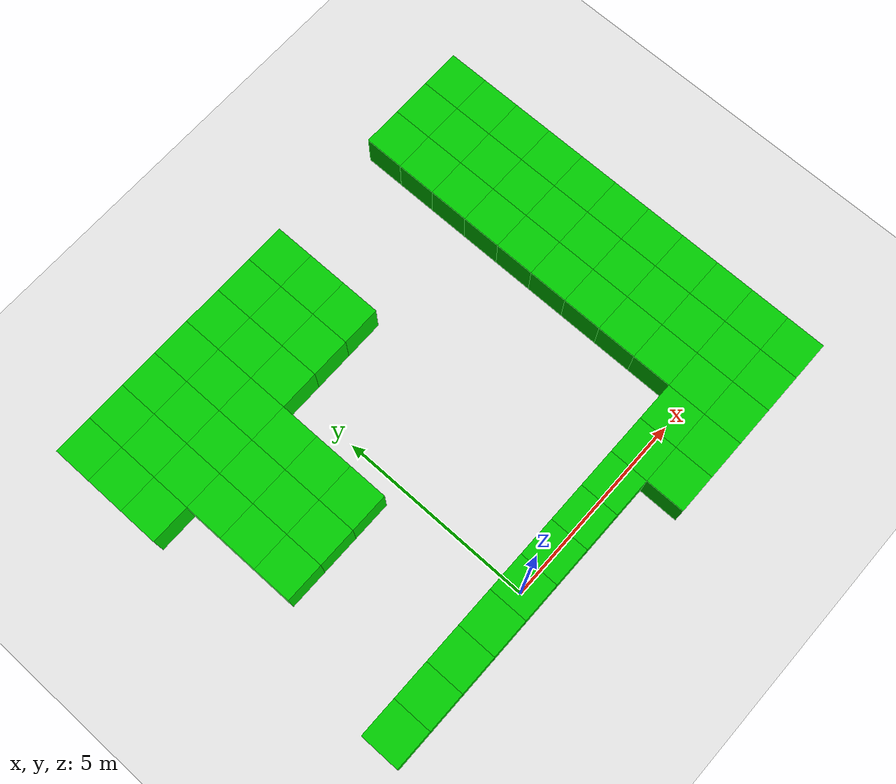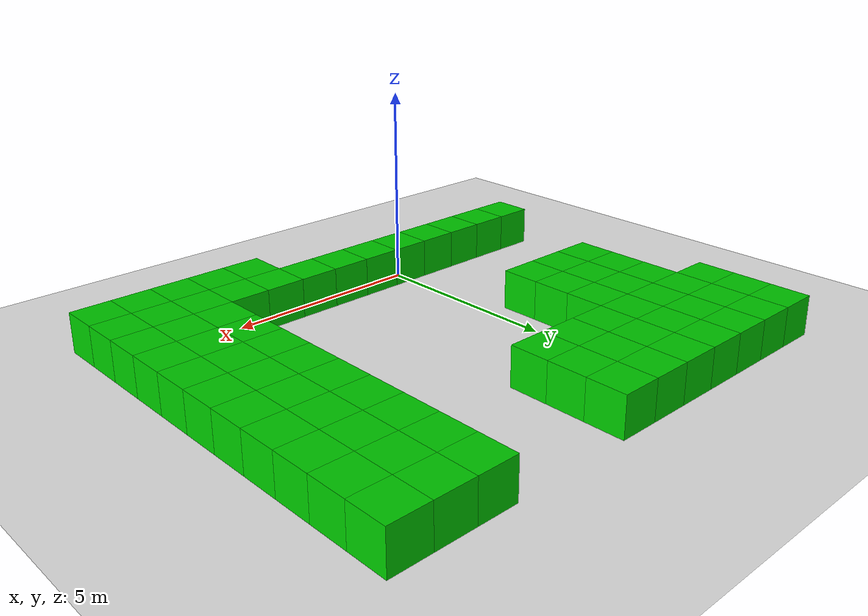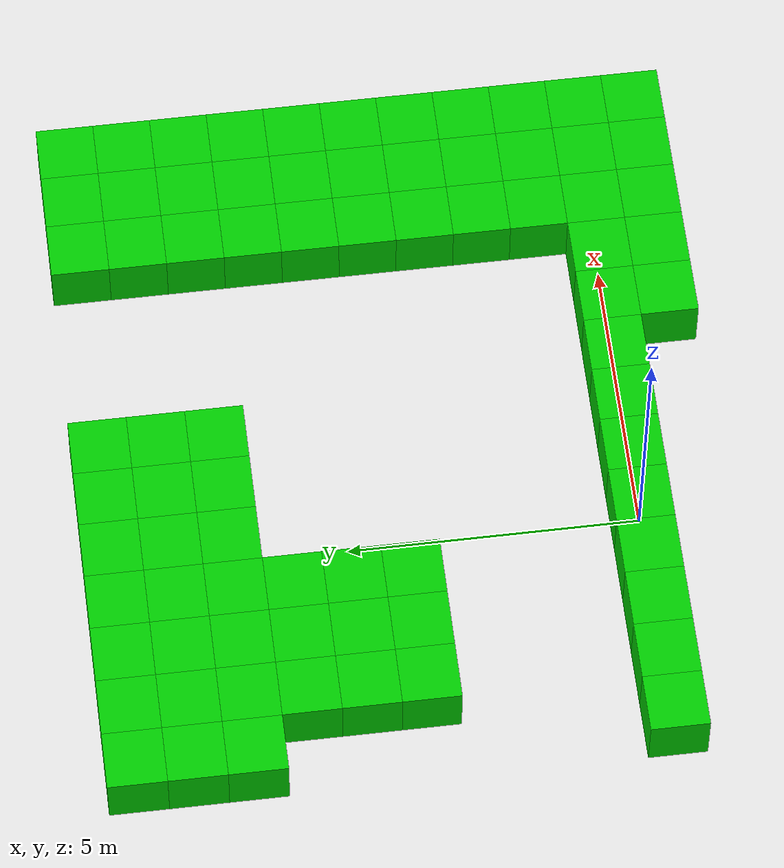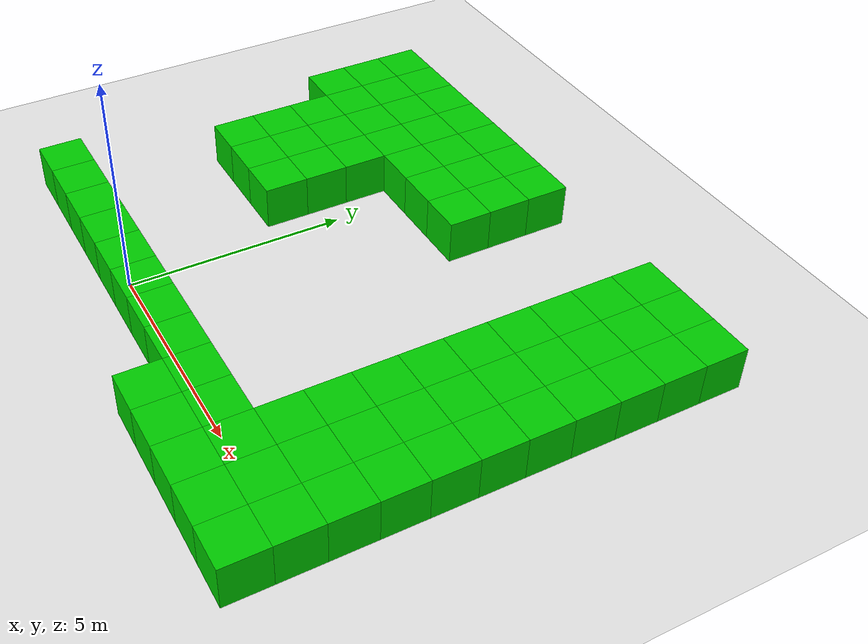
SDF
<sdf version="1.6">
 <world name="generated_maze">
  <model name="ground_plane">
   <static>true</static>
   <link name="link">
    <collision name="collision">
     <geometry><plane><normal>0 0 1</normal><size>100 100</size></plane></geometry>
    </collision>
    <visual name="visual">
     <geometry><plane><normal>0 0 1</normal><size>100 100</size></plane></geometry>
     <material>
      <ambient>0.9 0.9 0.9 1</ambient>
      <diffuse>0.9 0.9 0.9 1</diffuse>
      <specular>0.3 0.3 0.3 1</specular>
     </material>
    </visual>
   </link>
  </model>
  <model name="wall_0_5">
   <static>true</static>
   <pose>-4 9 0.5 0 0 0</pose>
   <link name="link">
    <collision name="collision"><geometry><box><size>1 1 1</size></box></geometry></collision>
    <visual name="visual">
     <geometry><box><size>1 1 1</size></box></geometry>
     <material>
      <ambient>0.0 0.8 0.0 1</ambient>
      <diffuse>0.0 0.8 0.0 1</diffuse>
      <specular>0.1 0.1 0.1 1</specular>
     </material>
    </visual>
   </link>
  </model>
  <model name="wall_0_6">
   <static>true</static>
   <pose>-3 9 0.5 0 0 0</pose>
   <link name="link">
    <collision name="collision"><geometry><box><size>1 1 1</size></box></geometry></collision>
    <visual name="visual">
     <geometry><box><size>1 1 1</size></box></geometry>
     <material>
      <ambient>0.0 0.8 0.0 1</ambient>
      <diffuse>0.0 0.8 0.0 1</diffuse>
      <specular>0.1 0.1 0.1 1</specular>
     </material>
    </visual>
   </link>
  </model>
  <model name="wall_0_7">
   <static>true</static>
   <pose>-2 9 0.5 0 0 0</pose>
   <link name="link">
    <collision name="collision"><geometry><box><size>1 1 1</size></box></geometry></collision>
    <visual name="visual">
     <geometry><box><size>1 1 1</size></box></geometry>
     <material>
      <ambient>0.0 0.8 0.0 1</ambient>
      <diffuse>0.0 0.8 0.0 1</diffuse>
      <specular>0.1 0.1 0.1 1</specular>
     </material>
    </visual>
   </link>
  </model>
  <model name="wall_0_8">
   <static>true</static>
   <pose>-1 9 0.5 0 0 0</pose>
   <link name="link">
    <collision name="collision"><geometry><box><size>1 1 1</size></box></geometry></collision>
    <visual name="visual">
     <geometry><box><size>1 1 1</size></box></geometry>
     <material>
      <ambient>0.0 0.8 0.0 1</ambient>
      <diffuse>0.0 0.8 0.0 1</diffuse>
      <specular>0.1 0.1 0.1 1</specular>
     </material>
    </visual>
   </link>
  </model>
  <model name="wall_0_9">
   <static>true</static>
   <pose>0 9 0.5 0 0 0</pose>
   <link name="link">
    <collision name="collision"><geometry><box><size>1 1 1</size></box></geometry></collision>
    <visual name="visual">
     <geometry><box><size>1 1 1</size></box></geometry>
     <material>
      <ambient>0.0 0.8 0.0 1</ambient>
      <diffuse>0.0 0.8 0.0 1</diffuse>
      <specular>0.1 0.1 0.1 1</specular>
     </material>
    </visual>
   </link>
  </model>
  <model name="wall_0_10">
   <static>true</static>
   <pose>1 9 0.5 0 0 0</pose>
   <link name="link">
    <collision name="collision"><geometry><box><size>1 1 1</size></box></geometry></collision>
    <visual name="visual">
     <geometry><box><size>1 1 1</size></box></geometry>
     <material>
      <ambient>0.0 0.8 0.0 1</ambient>
      <diffuse>0.0 0.8 0.0 1</diffuse>
      <specular>0.1 0.1 0.1 1</specular>
     </material>
    </visual>
   </link>
  </model>
  <model name="wall_0_11">
   <static>true</static>
   <pose>2 9 0.5 0 0 0</pose>
   <link name="link">
    <collision name="collision"><geometry><box><size>1 1 1</size></box></geometry></collision>
    <visual name="visual">
     <geometry><box><size>1 1 1</size></box></geometry>
     <material>
      <ambient>0.0 0.8 0.0 1</ambient>
      <diffuse>0.0 0.8 0.0 1</diffuse>
      <specular>0.1 0.1 0.1 1</specular>
     </material>
    </visual>
   </link>
  </model>
  <model name="wall_0_15">
   <static>true</static>
   <pose>6 9 0.5 0 0 0</pose>
   <link name="link">
    <collision name="collision"><geometry><box><size>1 1 1</size></box></geometry></collision>
    <visual name="visual">
     <geometry><box><size>1 1 1</size></box></geometry>
     <material>
      <ambient>0.0 0.8 0.0 1</ambient>
      <diffuse>0.0 0.8 0.0 1</diffuse>
      <specular>0.1 0.1 0.1 1</specular>
     </material>
    </visual>
   </link>
  </model>
  <model name="wall_0_16">
   <static>true</static>
   <pose>7 9 0.5 0 0 0</pose>
   <link name="link">
    <collision name="collision"><geometry><box><size>1 1 1</size></box></geometry></collision>
    <visual name="visual">
     <geometry><box><size>1 1 1</size></box></geometry>
     <material>
      <ambient>0.0 0.8 0.0 1</ambient>
      <diffuse>0.0 0.8 0.0 1</diffuse>
      <specular>0.1 0.1 0.1 1</specular>
     </material>
    </visual>
   </link>
  </model>
  <model name="wall_0_17">
   <static>true</static>
   <pose>8 9 0.5 0 0 0</pose>
   <link name="link">
    <collision name="collision"><geometry><box><size>1 1 1</size></box></geometry></collision>
    <visual name="visual">
     <geometry><box><size>1 1 1</size></box></geometry>
     <material>
      <ambient>0.0 0.8 0.0 1</ambient>
      <diffuse>0.0 0.8 0.0 1</diffuse>
      <specular>0.1 0.1 0.1 1</specular>
     </material>
    </visual>
   </link>
  </model>
  <model name="wall_1_5">
   <static>true</static>
   <pose>-4 8 0.5 0 0 0</pose>
   <link name="link">
    <collision name="collision"><geometry><box><size>1 1 1</size></box></geometry></collision>
    <visual name="visual">
     <geometry><box><size>1 1 1</size></box></geometry>
     <material>
      <ambient>0.0 0.8 0.0 1</ambient>
      <diffuse>0.0 0.8 0.0 1</diffuse>
      <specular>0.1 0.1 0.1 1</specular>
     </material>
    </visual>
   </link>
  </model>
  <model name="wall_1_6">
   <static>true</static>
   <pose>-3 8 0.5 0 0 0</pose>
   <link name="link">
    <collision name="collision"><geometry><box><size>1 1 1</size></box></geometry></collision>
    <visual name="visual">
     <geometry><box><size>1 1 1</size></box></geometry>
     <material>
      <ambient>0.0 0.8 0.0 1</ambient>
      <diffuse>0.0 0.8 0.0 1</diffuse>
      <specular>0.1 0.1 0.1 1</specular>
     </material>
    </visual>
   </link>
  </model>
  <model name="wall_1_7">
   <static>true</static>
   <pose>-2 8 0.5 0 0 0</pose>
   <link name="link">
    <collision name="collision"><geometry><box><size>1 1 1</size></box></geometry></collision>
    <visual name="visual">
     <geometry><box><size>1 1 1</size></box></geometry>
     <material>
      <ambient>0.0 0.8 0.0 1</ambient>
      <diffuse>0.0 0.8 0.0 1</diffuse>
      <specular>0.1 0.1 0.1 1</specular>
     </material>
    </visual>
   </link>
  </model>
  <model name="wall_1_8">
   <static>true</static>
   <pose>-1 8 0.5 0 0 0</pose>
   <link name="link">
    <collision name="collision"><geometry><box><size>1 1 1</size></box></geometry></collision>
    <visual name="visual">
     <geometry><box><size>1 1 1</size></box></geometry>
     <material>
      <ambient>0.0 0.8 0.0 1</ambient>
      <diffuse>0.0 0.8 0.0 1</diffuse>
      <specular>0.1 0.1 0.1 1</specular>
     </material>
    </visual>
   </link>
  </model>
  <model name="wall_1_9">
   <static>true</static>
   <pose>0 8 0.5 0 0 0</pose>
   <link name="link">
    <collision name="collision"><geometry><box><size>1 1 1</size></box></geometry></collision>
    <visual name="visual">
     <geometry><box><size>1 1 1</size></box></geometry>
     <material>
      <ambient>0.0 0.8 0.0 1</ambient>
      <diffuse>0.0 0.8 0.0 1</diffuse>
      <specular>0.1 0.1 0.1 1</specular>
     </material>
    </visual>
   </link>
  </model>
  <model name="wall_1_10">
   <static>true</static>
   <pose>1 8 0.5 0 0 0</pose>
   <link name="link">
    <collision name="collision"><geometry><box><size>1 1 1</size></box></geometry></collision>
    <visual name="visual">
     <geometry><box><size>1 1 1</size></box></geometry>
     <material>
      <ambient>0.0 0.8 0.0 1</ambient>
      <diffuse>0.0 0.8 0.0 1</diffuse>
      <specular>0.1 0.1 0.1 1</specular>
     </material>
    </visual>
   </link>
  </model>
  <model name="wall_1_11">
   <static>true</static>
   <pose>2 8 0.5 0 0 0</pose>
   <link name="link">
    <collision name="collision"><geometry><box><size>1 1 1</size></box></geometry></collision>
    <visual name="visual">
     <geometry><box><size>1 1 1</size></box></geometry>
     <material>
      <ambient>0.0 0.8 0.0 1</ambient>
      <diffuse>0.0 0.8 0.0 1</diffuse>
      <specular>0.1 0.1 0.1 1</specular>
     </material>
    </visual>
   </link>
  </model>
  <model name="wall_1_15">
   <static>true</static>
   <pose>6 8 0.5 0 0 0</pose>
   <link name="link">
    <collision name="collision"><geometry><box><size>1 1 1</size></box></geometry></collision>
    <visual name="visual">
     <geometry><box><size>1 1 1</size></box></geometry>
     <material>
      <ambient>0.0 0.8 0.0 1</ambient>
      <diffuse>0.0 0.8 0.0 1</diffuse>
      <specular>0.1 0.1 0.1 1</specular>
     </material>
    </visual>
   </link>
  </model>
  <model name="wall_1_16">
   <static>true</static>
   <pose>7 8 0.5 0 0 0</pose>
   <link name="link">
    <collision name="collision"><geometry><box><size>1 1 1</size></box></geometry></collision>
    <visual name="visual">
     <geometry><box><size>1 1 1</size></box></geometry>
     <material>
      <ambient>0.0 0.8 0.0 1</ambient>
      <diffuse>0.0 0.8 0.0 1</diffuse>
      <specular>0.1 0.1 0.1 1</specular>
     </material>
    </visual>
   </link>
  </model>
  <model name="wall_1_17">
   <static>true</static>
   <pose>8 8 0.5 0 0 0</pose>
   <link name="link">
    <collision name="collision"><geometry><box><size>1 1 1</size></box></geometry></collision>
    <visual name="visual">
     <geometry><box><size>1 1 1</size></box></geometry>
     <material>
      <ambient>0.0 0.8 0.0 1</ambient>
      <diffuse>0.0 0.8 0.0 1</diffuse>
      <specular>0.1 0.1 0.1 1</specular>
     </material>
    </visual>
   </link>
  </model>
  <model name="wall_2_5">
   <static>true</static>
   <pose>-4 7 0.5 0 0 0</pose>
   <link name="link">
    <collision name="collision"><geometry><box><size>1 1 1</size></box></geometry></collision>
    <visual name="visual">
     <geometry><box><size>1 1 1</size></box></geometry>
     <material>
      <ambient>0.0 0.8 0.0 1</ambient>
      <diffuse>0.0 0.8 0.0 1</diffuse>
      <specular>0.1 0.1 0.1 1</specular>
     </material>
    </visual>
   </link>
  </model>
  <model name="wall_2_6">
   <static>true</static>
   <pose>-3 7 0.5 0 0 0</pose>
   <link name="link">
    <collision name="collision"><geometry><box><size>1 1 1</size></box></geometry></collision>
    <visual name="visual">
     <geometry><box><size>1 1 1</size></box></geometry>
     <material>
      <ambient>0.0 0.8 0.0 1</ambient>
      <diffuse>0.0 0.8 0.0 1</diffuse>
      <specular>0.1 0.1 0.1 1</specular>
     </material>
    </visual>
   </link>
  </model>
  <model name="wall_2_7">
   <static>true</static>
   <pose>-2 7 0.5 0 0 0</pose>
   <link name="link">
    <collision name="collision"><geometry><box><size>1 1 1</size></box></geometry></collision>
    <visual name="visual">
     <geometry><box><size>1 1 1</size></box></geometry>
     <material>
      <ambient>0.0 0.8 0.0 1</ambient>
      <diffuse>0.0 0.8 0.0 1</diffuse>
      <specular>0.1 0.1 0.1 1</specular>
     </material>
    </visual>
   </link>
  </model>
  <model name="wall_2_8">
   <static>true</static>
   <pose>-1 7 0.5 0 0 0</pose>
   <link name="link">
    <collision name="collision"><geometry><box><size>1 1 1</size></box></geometry></collision>
    <visual name="visual">
     <geometry><box><size>1 1 1</size></box></geometry>
     <material>
      <ambient>0.0 0.8 0.0 1</ambient>
      <diffuse>0.0 0.8 0.0 1</diffuse>
      <specular>0.1 0.1 0.1 1</specular>
     </material>
    </visual>
   </link>
  </model>
  <model name="wall_2_9">
   <static>true</static>
   <pose>0 7 0.5 0 0 0</pose>
   <link name="link">
    <collision name="collision"><geometry><box><size>1 1 1</size></box></geometry></collision>
    <visual name="visual">
     <geometry><box><size>1 1 1</size></box></geometry>
     <material>
      <ambient>0.0 0.8 0.0 1</ambient>
      <diffuse>0.0 0.8 0.0 1</diffuse>
      <specular>0.1 0.1 0.1 1</specular>
     </material>
    </visual>
   </link>
  </model>
  <model name="wall_2_10">
   <static>true</static>
   <pose>1 7 0.5 0 0 0</pose>
   <link name="link">
    <collision name="collision"><geometry><box><size>1 1 1</size></box></geometry></collision>
    <visual name="visual">
     <geometry><box><size>1 1 1</size></box></geometry>
     <material>
      <ambient>0.0 0.8 0.0 1</ambient>
      <diffuse>0.0 0.8 0.0 1</diffuse>
      <specular>0.1 0.1 0.1 1</specular>
     </material>
    </visual>
   </link>
  </model>
  <model name="wall_2_11">
   <static>true</static>
   <pose>2 7 0.5 0 0 0</pose>
   <link name="link">
    <collision name="collision"><geometry><box><size>1 1 1</size></box></geometry></collision>
    <visual name="visual">
     <geometry><box><size>1 1 1</size></box></geometry>
     <material>
      <ambient>0.0 0.8 0.0 1</ambient>
      <diffuse>0.0 0.8 0.0 1</diffuse>
      <specular>0.1 0.1 0.1 1</specular>
     </material>
    </visual>
   </link>
  </model>
  <model name="wall_2_15">
   <static>true</static>
   <pose>6 7 0.5 0 0 0</pose>
   <link name="link">
    <collision name="collision"><geometry><box><size>1 1 1</size></box></geometry></collision>
    <visual name="visual">
     <geometry><box><size>1 1 1</size></box></geometry>
     <material>
      <ambient>0.0 0.8 0.0 1</ambient>
      <diffuse>0.0 0.8 0.0 1</diffuse>
      <specular>0.1 0.1 0.1 1</specular>
     </material>
    </visual>
   </link>
  </model>
  <model name="wall_2_16">
   <static>true</static>
   <pose>7 7 0.5 0 0 0</pose>
   <link name="link">
    <collision name="collision"><geometry><box><size>1 1 1</size></box></geometry></collision>
    <visual name="visual">
     <geometry><box><size>1 1 1</size></box></geometry>
     <material>
      <ambient>0.0 0.8 0.0 1</ambient>
      <diffuse>0.0 0.8 0.0 1</diffuse>
      <specular>0.1 0.1 0.1 1</specular>
     </material>
    </visual>
   </link>
  </model>
  <model name="wall_2_17">
   <static>true</static>
   <pose>8 7 0.5 0 0 0</pose>
   <link name="link">
    <collision name="collision"><geometry><box><size>1 1 1</size></box></geometry></collision>
    <visual name="visual">
     <geometry><box><size>1 1 1</size></box></geometry>
     <material>
      <ambient>0.0 0.8 0.0 1</ambient>
      <diffuse>0.0 0.8 0.0 1</diffuse>
      <specular>0.1 0.1 0.1 1</specular>
     </material>
    </visual>
   </link>
  </model>
  <model name="wall_3_6">
   <static>true</static>
   <pose>-3 6 0.5 0 0 0</pose>
   <link name="link">
    <collision name="collision"><geometry><box><size>1 1 1</size></box></geometry></collision>
    <visual name="visual">
     <geometry><box><size>1 1 1</size></box></geometry>
     <material>
      <ambient>0.0 0.8 0.0 1</ambient>
      <diffuse>0.0 0.8 0.0 1</diffuse>
      <specular>0.1 0.1 0.1 1</specular>
     </material>
    </visual>
   </link>
  </model>
  <model name="wall_3_7">
   <static>true</static>
   <pose>-2 6 0.5 0 0 0</pose>
   <link name="link">
    <collision name="collision"><geometry><box><size>1 1 1</size></box></geometry></collision>
    <visual name="visual">
     <geometry><box><size>1 1 1</size></box></geometry>
     <material>
      <ambient>0.0 0.8 0.0 1</ambient>
      <diffuse>0.0 0.8 0.0 1</diffuse>
      <specular>0.1 0.1 0.1 1</specular>
     </material>
    </visual>
   </link>
  </model>
  <model name="wall_3_8">
   <static>true</static>
   <pose>-1 6 0.5 0 0 0</pose>
   <link name="link">
    <collision name="collision"><geometry><box><size>1 1 1</size></box></geometry></collision>
    <visual name="visual">
     <geometry><box><size>1 1 1</size></box></geometry>
     <material>
      <ambient>0.0 0.8 0.0 1</ambient>
      <diffuse>0.0 0.8 0.0 1</diffuse>
      <specular>0.1 0.1 0.1 1</specular>
     </material>
    </visual>
   </link>
  </model>
  <model name="wall_3_15">
   <static>true</static>
   <pose>6 6 0.5 0 0 0</pose>
   <link name="link">
    <collision name="collision"><geometry><box><size>1 1 1</size></box></geometry></collision>
    <visual name="visual">
     <geometry><box><size>1 1 1</size></box></geometry>
     <material>
      <ambient>0.0 0.8 0.0 1</ambient>
      <diffuse>0.0 0.8 0.0 1</diffuse>
      <specular>0.1 0.1 0.1 1</specular>
     </material>
    </visual>
   </link>
  </model>
  <model name="wall_3_16">
   <static>true</static>
   <pose>7 6 0.5 0 0 0</pose>
   <link name="link">
    <collision name="collision"><geometry><box><size>1 1 1</size></box></geometry></collision>
    <visual name="visual">
     <geometry><box><size>1 1 1</size></box></geometry>
     <material>
      <ambient>0.0 0.8 0.0 1</ambient>
      <diffuse>0.0 0.8 0.0 1</diffuse>
      <specular>0.1 0.1 0.1 1</specular>
     </material>
    </visual>
   </link>
  </model>
  <model name="wall_3_17">
   <static>true</static>
   <pose>8 6 0.5 0 0 0</pose>
   <link name="link">
    <collision name="collision"><geometry><box><size>1 1 1</size></box></geometry></collision>
    <visual name="visual">
     <geometry><box><size>1 1 1</size></box></geometry>
     <material>
      <ambient>0.0 0.8 0.0 1</ambient>
      <diffuse>0.0 0.8 0.0 1</diffuse>
      <specular>0.1 0.1 0.1 1</specular>
     </material>
    </visual>
   </link>
  </model>
  <model name="wall_4_6">
   <static>true</static>
   <pose>-3 5 0.5 0 0 0</pose>
   <link name="link">
    <collision name="collision"><geometry><box><size>1 1 1</size></box></geometry></collision>
    <visual name="visual">
     <geometry><box><size>1 1 1</size></box></geometry>
     <material>
      <ambient>0.0 0.8 0.0 1</ambient>
      <diffuse>0.0 0.8 0.0 1</diffuse>
      <specular>0.1 0.1 0.1 1</specular>
     </material>
    </visual>
   </link>
  </model>
  <model name="wall_4_7">
   <static>true</static>
   <pose>-2 5 0.5 0 0 0</pose>
   <link name="link">
    <collision name="collision"><geometry><box><size>1 1 1</size></box></geometry></collision>
    <visual name="visual">
     <geometry><box><size>1 1 1</size></box></geometry>
     <material>
      <ambient>0.0 0.8 0.0 1</ambient>
      <diffuse>0.0 0.8 0.0 1</diffuse>
      <specular>0.1 0.1 0.1 1</specular>
     </material>
    </visual>
   </link>
  </model>
  <model name="wall_4_8">
   <static>true</static>
   <pose>-1 5 0.5 0 0 0</pose>
   <link name="link">
    <collision name="collision"><geometry><box><size>1 1 1</size></box></geometry></collision>
    <visual name="visual">
     <geometry><box><size>1 1 1</size></box></geometry>
     <material>
      <ambient>0.0 0.8 0.0 1</ambient>
      <diffuse>0.0 0.8 0.0 1</diffuse>
      <specular>0.1 0.1 0.1 1</specular>
     </material>
    </visual>
   </link>
  </model>
  <model name="wall_4_15">
   <static>true</static>
   <pose>6 5 0.5 0 0 0</pose>
   <link name="link">
    <collision name="collision"><geometry><box><size>1 1 1</size></box></geometry></collision>
    <visual name="visual">
     <geometry><box><size>1 1 1</size></box></geometry>
     <material>
      <ambient>0.0 0.8 0.0 1</ambient>
      <diffuse>0.0 0.8 0.0 1</diffuse>
      <specular>0.1 0.1 0.1 1</specular>
     </material>
    </visual>
   </link>
  </model>
  <model name="wall_4_16">
   <static>true</static>
   <pose>7 5 0.5 0 0 0</pose>
   <link name="link">
    <collision name="collision"><geometry><box><size>1 1 1</size></box></geometry></collision>
    <visual name="visual">
     <geometry><box><size>1 1 1</size></box></geometry>
     <material>
      <ambient>0.0 0.8 0.0 1</ambient>
      <diffuse>0.0 0.8 0.0 1</diffuse>
      <specular>0.1 0.1 0.1 1</specular>
     </material>
    </visual>
   </link>
  </model>
  <model name="wall_4_17">
   <static>true</static>
   <pose>8 5 0.5 0 0 0</pose>
   <link name="link">
    <collision name="collision"><geometry><box><size>1 1 1</size></box></geometry></collision>
    <visual name="visual">
     <geometry><box><size>1 1 1</size></box></geometry>
     <material>
      <ambient>0.0 0.8 0.0 1</ambient>
      <diffuse>0.0 0.8 0.0 1</diffuse>
      <specular>0.1 0.1 0.1 1</specular>
     </material>
    </visual>
   </link>
  </model>
  <model name="wall_5_6">
   <static>true</static>
   <pose>-3 4 0.5 0 0 0</pose>
   <link name="link">
    <collision name="collision"><geometry><box><size>1 1 1</size></box></geometry></collision>
    <visual name="visual">
     <geometry><box><size>1 1 1</size></box></geometry>
     <material>
      <ambient>0.0 0.8 0.0 1</ambient>
      <diffuse>0.0 0.8 0.0 1</diffuse>
      <specular>0.1 0.1 0.1 1</specular>
     </material>
    </visual>
   </link>
  </model>
  <model name="wall_5_7">
   <static>true</static>
   <pose>-2 4 0.5 0 0 0</pose>
   <link name="link">
    <collision name="collision"><geometry><box><size>1 1 1</size></box></geometry></collision>
    <visual name="visual">
     <geometry><box><size>1 1 1</size></box></geometry>
     <material>
      <ambient>0.0 0.8 0.0 1</ambient>
      <diffuse>0.0 0.8 0.0 1</diffuse>
      <specular>0.1 0.1 0.1 1</specular>
     </material>
    </visual>
   </link>
  </model>
  <model name="wall_5_8">
   <static>true</static>
   <pose>-1 4 0.5 0 0 0</pose>
   <link name="link">
    <collision name="collision"><geometry><box><size>1 1 1</size></box></geometry></collision>
    <visual name="visual">
     <geometry><box><size>1 1 1</size></box></geometry>
     <material>
      <ambient>0.0 0.8 0.0 1</ambient>
      <diffuse>0.0 0.8 0.0 1</diffuse>
      <specular>0.1 0.1 0.1 1</specular>
     </material>
    </visual>
   </link>
  </model>
  <model name="wall_5_15">
   <static>true</static>
   <pose>6 4 0.5 0 0 0</pose>
   <link name="link">
    <collision name="collision"><geometry><box><size>1 1 1</size></box></geometry></collision>
    <visual name="visual">
     <geometry><box><size>1 1 1</size></box></geometry>
     <material>
      <ambient>0.0 0.8 0.0 1</ambient>
      <diffuse>0.0 0.8 0.0 1</diffuse>
      <specular>0.1 0.1 0.1 1</specular>
     </material>
    </visual>
   </link>
  </model>
  <model name="wall_5_16">
   <static>true</static>
   <pose>7 4 0.5 0 0 0</pose>
   <link name="link">
    <collision name="collision"><geometry><box><size>1 1 1</size></box></geometry></collision>
    <visual name="visual">
     <geometry><box><size>1 1 1</size></box></geometry>
     <material>
      <ambient>0.0 0.8 0.0 1</ambient>
      <diffuse>0.0 0.8 0.0 1</diffuse>
      <specular>0.1 0.1 0.1 1</specular>
     </material>
    </visual>
   </link>
  </model>
  <model name="wall_5_17">
   <static>true</static>
   <pose>8 4 0.5 0 0 0</pose>
   <link name="link">
    <collision name="collision"><geometry><box><size>1 1 1</size></box></geometry></collision>
    <visual name="visual">
     <geometry><box><size>1 1 1</size></box></geometry>
     <material>
      <ambient>0.0 0.8 0.0 1</ambient>
      <diffuse>0.0 0.8 0.0 1</diffuse>
      <specular>0.1 0.1 0.1 1</specular>
     </material>
    </visual>
   </link>
  </model>
  <model name="wall_6_15">
   <static>true</static>
   <pose>6 3 0.5 0 0 0</pose>
   <link name="link">
    <collision name="collision"><geometry><box><size>1 1 1</size></box></geometry></collision>
    <visual name="visual">
     <geometry><box><size>1 1 1</size></box></geometry>
     <material>
      <ambient>0.0 0.8 0.0 1</ambient>
      <diffuse>0.0 0.8 0.0 1</diffuse>
      <specular>0.1 0.1 0.1 1</specular>
     </material>
    </visual>
   </link>
  </model>
  <model name="wall_6_16">
   <static>true</static>
   <pose>7 3 0.5 0 0 0</pose>
   <link name="link">
    <collision name="collision"><geometry><box><size>1 1 1</size></box></geometry></collision>
    <visual name="visual">
     <geometry><box><size>1 1 1</size></box></geometry>
     <material>
      <ambient>0.0 0.8 0.0 1</ambient>
      <diffuse>0.0 0.8 0.0 1</diffuse>
      <specular>0.1 0.1 0.1 1</specular>
     </material>
    </visual>
   </link>
  </model>
  <model name="wall_6_17">
   <static>true</static>
   <pose>8 3 0.5 0 0 0</pose>
   <link name="link">
    <collision name="collision"><geometry><box><size>1 1 1</size></box></geometry></collision>
    <visual name="visual">
     <geometry><box><size>1 1 1</size></box></geometry>
     <material>
      <ambient>0.0 0.8 0.0 1</ambient>
      <diffuse>0.0 0.8 0.0 1</diffuse>
      <specular>0.1 0.1 0.1 1</specular>
     </material>
    </visual>
   </link>
  </model>
  <model name="wall_7_15">
   <static>true</static>
   <pose>6 2 0.5 0 0 0</pose>
   <link name="link">
    <collision name="collision"><geometry><box><size>1 1 1</size></box></geometry></collision>
    <visual name="visual">
     <geometry><box><size>1 1 1</size></box></geometry>
     <material>
      <ambient>0.0 0.8 0.0 1</ambient>
      <diffuse>0.0 0.8 0.0 1</diffuse>
      <specular>0.1 0.1 0.1 1</specular>
     </material>
    </visual>
   </link>
  </model>
  <model name="wall_7_16">
   <static>true</static>
   <pose>7 2 0.5 0 0 0</pose>
   <link name="link">
    <collision name="collision"><geometry><box><size>1 1 1</size></box></geometry></collision>
    <visual name="visual">
     <geometry><box><size>1 1 1</size></box></geometry>
     <material>
      <ambient>0.0 0.8 0.0 1</ambient>
      <diffuse>0.0 0.8 0.0 1</diffuse>
      <specular>0.1 0.1 0.1 1</specular>
     </material>
    </visual>
   </link>
  </model>
  <model name="wall_7_17">
   <static>true</static>
   <pose>8 2 0.5 0 0 0</pose>
   <link name="link">
    <collision name="collision"><geometry><box><size>1 1 1</size></box></geometry></collision>
    <visual name="visual">
     <geometry><box><size>1 1 1</size></box></geometry>
     <material>
      <ambient>0.0 0.8 0.0 1</ambient>
      <diffuse>0.0 0.8 0.0 1</diffuse>
      <specular>0.1 0.1 0.1 1</specular>
     </material>
    </visual>
   </link>
  </model>
  <model name="wall_8_15">
   <static>true</static>
   <pose>6 1 0.5 0 0 0</pose>
   <link name="link">
    <collision name="collision"><geometry><box><size>1 1 1</size></box></geometry></collision>
    <visual name="visual">
     <geometry><box><size>1 1 1</size></box></geometry>
     <material>
      <ambient>0.0 0.8 0.0 1</ambient>
      <diffuse>0.0 0.8 0.0 1</diffuse>
      <specular>0.1 0.1 0.1 1</specular>
     </material>
    </visual>
   </link>
  </model>
  <model name="wall_8_16">
   <static>true</static>
   <pose>7 1 0.5 0 0 0</pose>
   <link name="link">
    <collision name="collision"><geometry><box><size>1 1 1</size></box></geometry></collision>
    <visual name="visual">
     <geometry><box><size>1 1 1</size></box></geometry>
     <material>
      <ambient>0.0 0.8 0.0 1</ambient>
      <diffuse>0.0 0.8 0.0 1</diffuse>
      <specular>0.1 0.1 0.1 1</specular>
     </material>
    </visual>
   </link>
  </model>
  <model name="wall_8_17">
   <static>true</static>
   <pose>8 1 0.5 0 0 0</pose>
   <link name="link">
    <collision name="collision"><geometry><box><size>1 1 1</size></box></geometry></collision>
    <visual name="visual">
     <geometry><box><size>1 1 1</size></box></geometry>
     <material>
      <ambient>0.0 0.8 0.0 1</ambient>
      <diffuse>0.0 0.8 0.0 1</diffuse>
      <specular>0.1 0.1 0.1 1</specular>
     </material>
    </visual>
   </link>
  </model>
  <model name="wall_9_5">
   <static>true</static>
   <pose>-4 0 0.5 0 0 0</pose>
   <link name="link">
    <collision name="collision"><geometry><box><size>1 1 1</size></box></geometry></collision>
    <visual name="visual">
     <geometry><box><size>1 1 1</size></box></geometry>
     <material>
      <ambient>0.0 0.8 0.0 1</ambient>
      <diffuse>0.0 0.8 0.0 1</diffuse>
      <specular>0.1 0.1 0.1 1</specular>
     </material>
    </visual>
   </link>
  </model>
  <model name="wall_9_6">
   <static>true</static>
   <pose>-3 0 0.5 0 0 0</pose>
   <link name="link">
    <collision name="collision"><geometry><box><size>1 1 1</size></box></geometry></collision>
    <visual name="visual">
     <geometry><box><size>1 1 1</size></box></geometry>
     <material>
      <ambient>0.0 0.8 0.0 1</ambient>
      <diffuse>0.0 0.8 0.0 1</diffuse>
      <specular>0.1 0.1 0.1 1</specular>
     </material>
    </visual>
   </link>
  </model>
  <model name="wall_9_7">
   <static>true</static>
   <pose>-2 0 0.5 0 0 0</pose>
   <link name="link">
    <collision name="collision"><geometry><box><size>1 1 1</size></box></geometry></collision>
    <visual name="visual">
     <geometry><box><size>1 1 1</size></box></geometry>
     <material>
      <ambient>0.0 0.8 0.0 1</ambient>
      <diffuse>0.0 0.8 0.0 1</diffuse>
      <specular>0.1 0.1 0.1 1</specular>
     </material>
    </visual>
   </link>
  </model>
  <model name="wall_9_8">
   <static>true</static>
   <pose>-1 0 0.5 0 0 0</pose>
   <link name="link">
    <collision name="collision"><geometry><box><size>1 1 1</size></box></geometry></collision>
    <visual name="visual">
     <geometry><box><size>1 1 1</size></box></geometry>
     <material>
      <ambient>0.0 0.8 0.0 1</ambient>
      <diffuse>0.0 0.8 0.0 1</diffuse>
      <specular>0.1 0.1 0.1 1</specular>
     </material>
    </visual>
   </link>
  </model>
  <model name="wall_9_9">
   <static>true</static>
   <pose>0 0 0.5 0 0 0</pose>
   <link name="link">
    <collision name="collision"><geometry><box><size>1 1 1</size></box></geometry></collision>
    <visual name="visual">
     <geometry><box><size>1 1 1</size></box></geometry>
     <material>
      <ambient>0.0 0.8 0.0 1</ambient>
      <diffuse>0.0 0.8 0.0 1</diffuse>
      <specular>0.1 0.1 0.1 1</specular>
     </material>
    </visual>
   </link>
  </model>
  <model name="wall_9_10">
   <static>true</static>
   <pose>1 0 0.5 0 0 0</pose>
   <link name="link">
    <collision name="collision"><geometry><box><size>1 1 1</size></box></geometry></collision>
    <visual name="visual">
     <geometry><box><size>1 1 1</size></box></geometry>
     <material>
      <ambient>0.0 0.8 0.0 1</ambient>
      <diffuse>0.0 0.8 0.0 1</diffuse>
      <specular>0.1 0.1 0.1 1</specular>
     </material>
    </visual>
   </link>
  </model>
  <model name="wall_9_11">
   <static>true</static>
   <pose>2 0 0.5 0 0 0</pose>
   <link name="link">
    <collision name="collision"><geometry><box><size>1 1 1</size></box></geometry></collision>
    <visual name="visual">
     <geometry><box><size>1 1 1</size></box></geometry>
     <material>
      <ambient>0.0 0.8 0.0 1</ambient>
      <diffuse>0.0 0.8 0.0 1</diffuse>
      <specular>0.1 0.1 0.1 1</specular>
     </material>
    </visual>
   </link>
  </model>
  <model name="wall_9_12">
   <static>true</static>
   <pose>3 0 0.5 0 0 0</pose>
   <link name="link">
    <collision name="collision"><geometry><box><size>1 1 1</size></box></geometry></collision>
    <visual name="visual">
     <geometry><box><size>1 1 1</size></box></geometry>
     <material>
      <ambient>0.0 0.8 0.0 1</ambient>
      <diffuse>0.0 0.8 0.0 1</diffuse>
      <specular>0.1 0.1 0.1 1</specular>
     </material>
    </visual>
   </link>
  </model>
  <model name="wall_9_13">
   <static>true</static>
   <pose>4 0 0.5 0 0 0</pose>
   <link name="link">
    <collision name="collision"><geometry><box><size>1 1 1</size></box></geometry></collision>
    <visual name="visual">
     <geometry><box><size>1 1 1</size></box></geometry>
     <material>
      <ambient>0.0 0.8 0.0 1</ambient>
      <diffuse>0.0 0.8 0.0 1</diffuse>
      <specular>0.1 0.1 0.1 1</specular>
     </material>
    </visual>
   </link>
  </model>
  <model name="wall_9_14">
   <static>true</static>
   <pose>5 0 0.5 0 0 0</pose>
   <link name="link">
    <collision name="collision"><geometry><box><size>1 1 1</size></box></geometry></collision>
    <visual name="visual">
     <geometry><box><size>1 1 1</size></box></geometry>
     <material>
      <ambient>0.0 0.8 0.0 1</ambient>
      <diffuse>0.0 0.8 0.0 1</diffuse>
      <specular>0.1 0.1 0.1 1</specular>
     </material>
    </visual>
   </link>
  </model>
  <model name="wall_9_15">
   <static>true</static>
   <pose>6 0 0.5 0 0 0</pose>
   <link name="link">
    <collision name="collision"><geometry><box><size>1 1 1</size></box></geometry></collision>
    <visual name="visual">
     <geometry><box><size>1 1 1</size></box></geometry>
     <material>
      <ambient>0.0 0.8 0.0 1</ambient>
      <diffuse>0.0 0.8 0.0 1</diffuse>
      <specular>0.1 0.1 0.1 1</specular>
     </material>
    </visual>
   </link>
  </model>
  <model name="wall_9_16">
   <static>true</static>
   <pose>7 0 0.5 0 0 0</pose>
   <link name="link">
    <collision name="collision"><geometry><box><size>1 1 1</size></box></geometry></collision>
    <visual name="visual">
     <geometry><box><size>1 1 1</size></box></geometry>
     <material>
      <ambient>0.0 0.8 0.0 1</ambient>
      <diffuse>0.0 0.8 0.0 1</diffuse>
      <specular>0.1 0.1 0.1 1</specular>
     </material>
    </visual>
   </link>
  </model>
  <model name="wall_9_17">
   <static>true</static>
   <pose>8 0 0.5 0 0 0</pose>
   <link name="link">
    <collision name="collision"><geometry><box><size>1 1 1</size></box></geometry></collision>
    <visual name="visual">
     <geometry><box><size>1 1 1</size></box></geometry>
     <material>
      <ambient>0.0 0.8 0.0 1</ambient>
      <diffuse>0.0 0.8 0.0 1</diffuse>
      <specular>0.1 0.1 0.1 1</specular>
     </material>
    </visual>
   </link>
  </model>
  <model name="wall_10_13">
   <static>true</static>
   <pose>4 -1 0.5 0 0 0</pose>
   <link name="link">
    <collision name="collision"><geometry><box><size>1 1 1</size></box></geometry></collision>
    <visual name="visual">
     <geometry><box><size>1 1 1</size></box></geometry>
     <material>
      <ambient>0.0 0.8 0.0 1</ambient>
      <diffuse>0.0 0.8 0.0 1</diffuse>
      <specular>0.1 0.1 0.1 1</specular>
     </material>
    </visual>
   </link>
  </model>
  <model name="wall_10_14">
   <static>true</static>
   <pose>5 -1 0.5 0 0 0</pose>
   <link name="link">
    <collision name="collision"><geometry><box><size>1 1 1</size></box></geometry></collision>
    <visual name="visual">
     <geometry><box><size>1 1 1</size></box></geometry>
     <material>
      <ambient>0.0 0.8 0.0 1</ambient>
      <diffuse>0.0 0.8 0.0 1</diffuse>
      <specular>0.1 0.1 0.1 1</specular>
     </material>
    </visual>
   </link>
  </model>
  <model name="wall_10_15">
   <static>true</static>
   <pose>6 -1 0.5 0 0 0</pose>
   <link name="link">
    <collision name="collision"><geometry><box><size>1 1 1</size></box></geometry></collision>
    <visual name="visual">
     <geometry><box><size>1 1 1</size></box></geometry>
     <material>
      <ambient>0.0 0.8 0.0 1</ambient>
      <diffuse>0.0 0.8 0.0 1</diffuse>
      <specular>0.1 0.1 0.1 1</specular>
     </material>
    </visual>
   </link>
  </model>
  <model name="wall_10_16">
   <static>true</static>
   <pose>7 -1 0.5 0 0 0</pose>
   <link name="link">
    <collision name="collision"><geometry><box><size>1 1 1</size></box></geometry></collision>
    <visual name="visual">
     <geometry><box><size>1 1 1</size></box></geometry>
     <material>
      <ambient>0.0 0.8 0.0 1</ambient>
      <diffuse>0.0 0.8 0.0 1</diffuse>
      <specular>0.1 0.1 0.1 1</specular>
     </material>
    </visual>
   </link>
  </model>
  <model name="wall_10_17">
   <static>true</static>
   <pose>8 -1 0.5 0 0 0</pose>
   <link name="link">
    <collision name="collision"><geometry><box><size>1 1 1</size></box></geometry></collision>
    <visual name="visual">
     <geometry><box><size>1 1 1</size></box></geometry>
     <material>
      <ambient>0.0 0.8 0.0 1</ambient>
      <diffuse>0.0 0.8 0.0 1</diffuse>
      <specular>0.1 0.1 0.1 1</specular>
     </material>
    </visual>
   </link>
  </model>
 </world>
</sdf>
